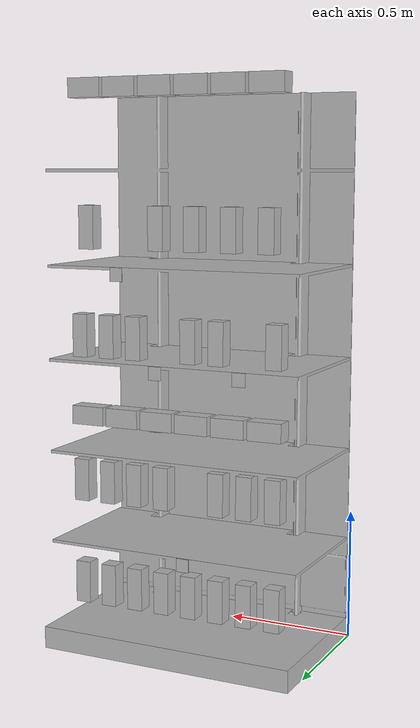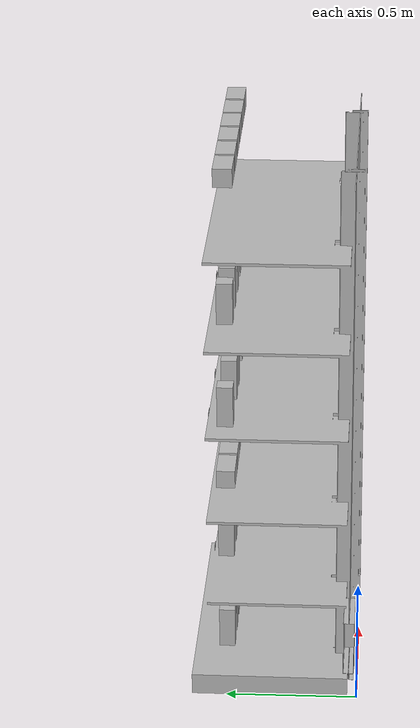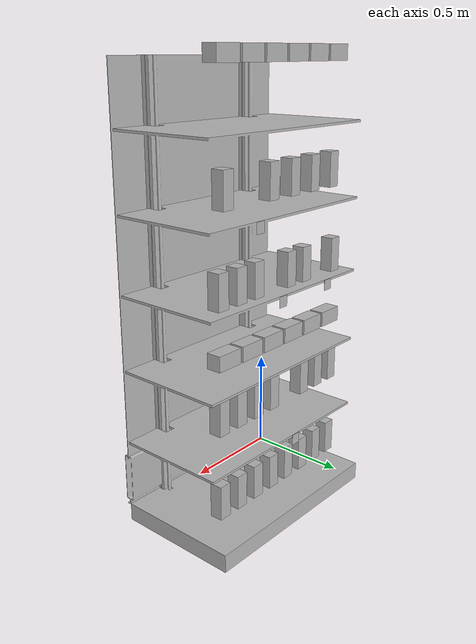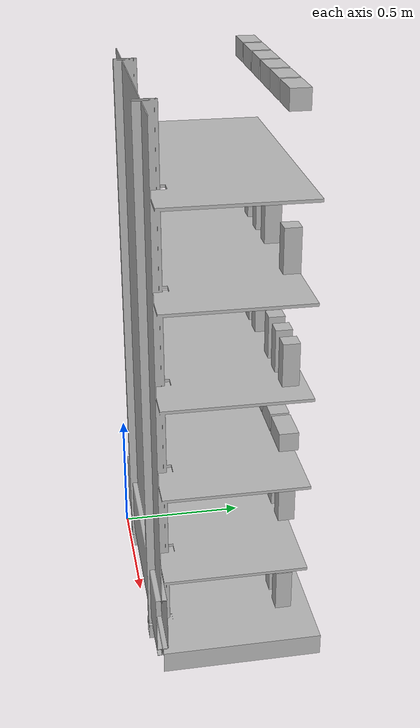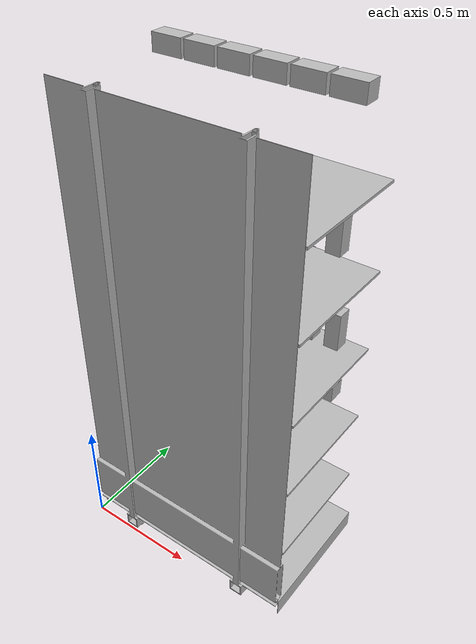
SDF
<?xml version="1.0"?>
<sdf version='1.6'>
  <model name='AH_shelf'>
    <static>1</static>
    <link name='link'>
      <inertial>
        <mass>1</mass>
        <inertia>
          <ixx>1</ixx>
          <ixy>0</ixy>
          <ixz>0</ixz>
          <iyy>1</iyy>
          <iyz>0</iyz>
          <izz>1</izz>
        </inertia>
      </inertial>
      <pose frame=''>-0 0 0 0 0 0</pose>

      <visual name='visual'>
        <pose frame=''>0 0 0 0 0 0</pose>
        <geometry>
          <mesh>
            <uri>model://AH_shelf/AH_shelf.dae</uri>
            <scale>1 1 1</scale>
          </mesh>
        </geometry>
        <transparency>0</transparency>
        <cast_shadows>1</cast_shadows>
      </visual>

      <collision name='collision'>
        <laser_retro>0</laser_retro>
        <max_contacts>10</max_contacts>
        <pose frame=''>0 0 0 0 -0 0</pose>
        <geometry>
          <mesh>
            <uri>model://AH_shelf/AH_shelf.dae</uri>
            <scale>1 1 1</scale>
          </mesh>
        </geometry>
        <surface>
          <friction>
            <ode>
              <mu>1</mu>
              <mu2>1</mu2>
              <fdir1>0 0 0</fdir1>
              <slip1>0</slip1>
              <slip2>0</slip2>
            </ode>
            <torsional>
              <coefficient>1</coefficient>
              <patch_radius>0</patch_radius>
              <surface_radius>0</surface_radius>
              <use_patch_radius>1</use_patch_radius>
              <ode>
                <slip>0</slip>
              </ode>
            </torsional>
          </friction>
          <bounce>
            <restitution_coefficient>0</restitution_coefficient>
            <threshold>1e+06</threshold>
          </bounce>
          <contact>
            <collide_without_contact>0</collide_without_contact>
            <collide_without_contact_bitmask>1</collide_without_contact_bitmask>
            <collide_bitmask>1</collide_bitmask>
            <ode>
              <soft_cfm>0</soft_cfm>
              <soft_erp>0.2</soft_erp>
              <kp>1e+13</kp>
              <kd>1</kd>
              <max_vel>0.01</max_vel>
              <min_depth>0</min_depth>
            </ode>
            <bullet>
              <split_impulse>1</split_impulse>
              <split_impulse_penetration_threshold>-0.01</split_impulse_penetration_threshold>
              <soft_cfm>0</soft_cfm>
              <soft_erp>0.2</soft_erp>
              <kp>1e+13</kp>
              <kd>1</kd>
            </bullet>
          </contact>
        </surface>
      </collision>
    </link>

    <include>
      <static>1</static>
      <uri>model://legacy_models/apriltag_1</uri>
      <pose>0.225 0.57 1.085 1.57 0 0</pose>
      <name>tag_1</name>
    </include>

    <include>
      <static>1</static>
      <uri>model://legacy_models/apriltag_1</uri>
      <pose>0.445 0.57 0.385 1.57 0 0</pose>
      <name>tag_2</name>
    </include>

    <include>
      <static>1</static>
      <uri>model://legacy_models/apriltag_1</uri>
      <pose>0.555 0.57 1.085 1.57 0 0</pose>
      <name>tag_3</name>
    </include>

    <include>
      <static>1</static>
      <uri>model://legacy_models/apriltag_1</uri>
      <pose>0.71 0.57 1.435 1.57 0 0</pose>
      <name>tag_4</name>
    </include>

    <model name="board1">
      <pose>0 0.5 0.25 0 0 0</pose>

      <include>
        <uri>model://AH_hagelslag_puur</uri>
        <pose>0.111111111111 0 0 0 0 1.57</pose>
        <name>ah_puur_1</name>
      </include>

      <include>
        <uri>model://AH_hagelslag_puur</uri>
        <pose>0.222222222222 0 0 0 0 1.57</pose>
        <name>ah_puur_2</name>
      </include>

      <include>
        <uri>model://AH_hagelslag_puur</uri>
        <pose>0.333333333333 0 0 0 0 1.57</pose>
        <name>ah_puur_3</name>
      </include>

      <include>
        <uri>model://AH_hagelslag_puur</uri>
        <pose>0.444444444444 0 0 0 0 1.57</pose>
        <name>ah_puur_4</name>
      </include>

      <include>
        <uri>model://AH_hagelslag_puur</uri>
        <pose>0.555555555556 0 0 0 0 1.57</pose>
        <name>ah_puur_5</name>
      </include>

      <include>
        <uri>model://AH_hagelslag_puur</uri>
        <pose>0.666666666667 0 0 0 0 1.57</pose>
        <name>ah_puur_6</name>
      </include>

      <include>
        <uri>model://AH_hagelslag_puur</uri>
        <pose>0.777777777778 0 0 0 0 1.57</pose>
        <name>ah_puur_7</name>
      </include>

      <include>
        <uri>model://AH_hagelslag_puur</uri>
        <pose>0.888888888889 0 0 0 0 1.57</pose>
        <name>ah_puur_8</name>
      </include>

    </model>

    <model name="board2">
      <pose>0 0.5 0.65 0 0 0</pose>

      <include>
        <uri>model://AH_hagelslag_melk</uri>
        <pose>0.111111111111 0 0 0 0 1.57</pose>
        <name>ah_melk_7</name>
      </include>

      <include>
        <uri>model://AH_hagelslag_melk</uri>
        <pose>0.222222222222 0 0 0 0 1.57</pose>
        <name>ah_melk_8</name>
      </include>

      <include>
        <uri>model://AH_hagelslag_melk</uri>
        <pose>0.333333333333 0 0 0 0 1.57</pose>
        <name>ah_melk_9</name>
      </include>

      <include>
        <uri>model://AH_hagelslag_melk</uri>
        <pose>0.555555555556 0 0 0 0 1.57</pose>
        <name>ah_melk_11</name>
      </include>

      <include>
        <uri>model://AH_hagelslag_melk</uri>
        <pose>0.666666666667 0 0 0 0 1.57</pose>
        <name>ah_melk_12</name>
      </include>

      <include>
        <uri>model://AH_hagelslag_melk</uri>
        <pose>0.777777777778 0 0 0 0 1.57</pose>
        <name>ah_melk_13</name>
      </include>

      <include>
        <uri>model://AH_hagelslag_melk</uri>
        <pose>0.888888888889 0 0 0 0 1.57</pose>
        <name>ah_melk_14</name>
      </include>

    </model>

    <model name="board3">
      <pose>0 0.5 0.9 0 0 0</pose>

      <include>
        <uri>model://AH_thee_bosvruchten</uri>
        <pose>0.142857142857 0 0 0 0 1.57</pose>
        <name>ah_thee_bosvruchten_1</name>
      </include>

      <include>
        <uri>model://AH_thee_bosvruchten</uri>
        <pose>0.285714285714 0 0 0 0 1.57</pose>
        <name>ah_thee_bosvruchten_2</name>
      </include>

      <include>
        <uri>model://AH_thee_bosvruchten</uri>
        <pose>0.428571428571 0 0 0 0 1.57</pose>
        <name>ah_thee_bosvruchten_3</name>
      </include>

      <include>
        <uri>model://AH_thee_bosvruchten</uri>
        <pose>0.571428571429 0 0 0 0 1.57</pose>
        <name>ah_thee_bosvruchten_4</name>
      </include>

      <include>
        <uri>model://AH_thee_bosvruchten</uri>
        <pose>0.714285714286 0 0 0 0 1.57</pose>
        <name>ah_thee_bosvruchten_5</name>
      </include>

      <include>
        <uri>model://AH_thee_bosvruchten</uri>
        <pose>0.857142857143 0 0 0 0 1.57</pose>
        <name>ah_thee_bosvruchten_6</name>
      </include>

    </model>

    <model name="board4">
      <pose>0 0.5 1.2 0 0 0</pose>

      <include>
        <uri>model://AH_hagelslag_puur</uri>
        <pose>0.111111111111 0 0 0 0 1.57</pose>
        <name>ah_puur_9</name>
      </include>

      <include>
        <uri>model://AH_hagelslag_puur</uri>
        <pose>0.333333333333 0 0 0 0 1.57</pose>
        <name>ah_puur_11</name>
      </include>

      <include>
        <uri>model://AH_hagelslag_puur</uri>
        <pose>0.444444444444 0 0 0 0 1.57</pose>
        <name>ah_puur_12</name>
      </include>

      <include>
        <uri>model://AH_hagelslag_puur</uri>
        <pose>0.666666666667 0 0 0 0 1.57</pose>
        <name>ah_puur_14</name>
      </include>

      <include>
        <uri>model://AH_hagelslag_puur</uri>
        <pose>0.777777777778 0 0 0 0 1.57</pose>
        <name>ah_puur_15</name>
      </include>

      <include>
        <uri>model://AH_hagelslag_puur</uri>
        <pose>0.888888888889 0 0 0 0 1.57</pose>
        <name>ah_puur_16</name>
      </include>

    </model>

    <model name="board5">
      <pose>0 0.5 1.6 0 0 0</pose>

      <include>
        <uri>model://AH_hagelslag_melk</uri>
        <pose>0.142857142857 0 0 0 0 1.57</pose>
        <name>ah_melk_1</name>
      </include>

      <include>
        <uri>model://AH_hagelslag_melk</uri>
        <pose>0.285714285714 0 0 0 0 1.57</pose>
        <name>ah_melk_2</name>
      </include>

      <include>
        <uri>model://AH_hagelslag_melk</uri>
        <pose>0.428571428571 0 0 0 0 1.57</pose>
        <name>ah_melk_3</name>
      </include>

      <include>
        <uri>model://AH_hagelslag_melk</uri>
        <pose>0.571428571429 0 0 0 0 1.57</pose>
        <name>ah_melk_4</name>
      </include>

      <include>
        <uri>model://AH_hagelslag_melk</uri>
        <pose>0.857142857143 0 0 0 0 1.57</pose>
        <name>ah_melk_6</name>
      </include>

    </model>

    <model name="board6">
      <pose>0 0.5 2.1 0 0 0</pose>

      <include>
        <uri>model://AH_thee_mango</uri>
        <pose>0.142857142857 0 0 0 0 1.57</pose>
        <name>ah_thee_mango_1</name>
      </include>

      <include>
        <uri>model://AH_thee_mango</uri>
        <pose>0.285714285714 0 0 0 0 1.57</pose>
        <name>ah_thee_mango_2</name>
      </include>

      <include>
        <uri>model://AH_thee_mango</uri>
        <pose>0.428571428571 0 0 0 0 1.57</pose>
        <name>ah_thee_mango_3</name>
      </include>

      <include>
        <uri>model://AH_thee_mango</uri>
        <pose>0.571428571429 0 0 0 0 1.57</pose>
        <name>ah_thee_mango_4</name>
      </include>

      <include>
        <uri>model://AH_thee_mango</uri>
        <pose>0.714285714286 0 0 0 0 1.57</pose>
        <name>ah_thee_mango_5</name>
      </include>

      <include>
        <uri>model://AH_thee_mango</uri>
        <pose>0.857142857143 0 0 0 0 1.57</pose>
        <name>ah_thee_mango_6</name>
      </include>

    </model>

  </model>
</sdf>

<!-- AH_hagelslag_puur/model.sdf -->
<sdf version='1.6'>
  <model name='AH_hagelslag_puur'>
    <static>0</static>
    <link name='link_0'>

      <inertial>
        <mass>0.1</mass>
        <inertia>
          <ixx>1.4e-03</ixx>
          <ixy>0</ixy>
          <ixz>0</ixz>
          <iyy>1.4e-03</iyy>
          <iyz>0</iyz>
          <izz>2.8e-03</izz>
        </inertia>
      </inertial>

      <pose frame=''>-0 0 0 0 -0 0</pose>

      <visual name='visual'>
        <pose frame=''>0 0 0 0 -0 0</pose>
        <geometry>
          <mesh>
            <uri>model://AH_hagelslag_puur/AH_hagelslag_puur/AH_hagelslag_puur.dae</uri>
            <scale>1 1 1</scale>
          </mesh>
        </geometry>
        <transparency>0</transparency>
        <cast_shadows>1</cast_shadows>
      </visual>

      <collision name='collision'>
        <laser_retro>0</laser_retro>
        <max_contacts>10</max_contacts>
        <pose frame=''>0 0 0 0 -0 0</pose>
        <geometry>
          <mesh>
            <uri>model://AH_hagelslag_puur/AH_hagelslag_puur/AH_hagelslag_puur.dae</uri>
            <scale>1 1 1</scale>
          </mesh>
        </geometry>
        <surface>
          <friction>
            <ode>
              <mu>1</mu>
              <mu2>1</mu2>
              <fdir1>0 0 0</fdir1>
              <slip1>0</slip1>
              <slip2>0</slip2>
            </ode>
            <torsional>
              <coefficient>1</coefficient>
              <patch_radius>0</patch_radius>
              <surface_radius>0</surface_radius>
              <use_patch_radius>1</use_patch_radius>
              <ode>
                <slip>0</slip>
              </ode>
            </torsional>
          </friction>
          <bounce>
            <restitution_coefficient>0</restitution_coefficient>
            <threshold>1e+06</threshold>
          </bounce>
          <contact>
            <collide_without_contact>0</collide_without_contact>
            <collide_without_contact_bitmask>1</collide_without_contact_bitmask>
            <collide_bitmask>1</collide_bitmask>
            <ode>
              <soft_cfm>0</soft_cfm>
              <soft_erp>0.2</soft_erp>
              <kp>1e+13</kp>
              <kd>1</kd>
              <max_vel>0.01</max_vel>
              <min_depth>0</min_depth>
            </ode>
            <bullet>
              <split_impulse>1</split_impulse>
              <split_impulse_penetration_threshold>-0.01</split_impulse_penetration_threshold>
              <soft_cfm>0</soft_cfm>
              <soft_erp>0.2</soft_erp>
              <kp>1e+13</kp>
              <kd>1</kd>
            </bullet>
          </contact>
        </surface>
      </collision>

    </link>
  </model>
</sdf>

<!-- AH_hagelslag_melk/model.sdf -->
<sdf version='1.6'>
  <model name='AH_hagelslag_melk'>
    <static>0</static>
    <link name='link_0'>

      <inertial>
        <mass>0.1</mass>
        <inertia>
          <ixx>1.4e-03</ixx>
          <ixy>0</ixy>
          <ixz>0</ixz>
          <iyy>1.4e-03</iyy>
          <iyz>0</iyz>
          <izz>2.8e-03</izz>
        </inertia>
      </inertial>

      <pose frame=''>-0 0 0 0 -0 0</pose>

      <visual name='visual'>
        <pose frame=''>0 0 0 0 -0 0</pose>
        <geometry>
          <mesh>
            <uri>model://AH_hagelslag_melk/AH_hagelslag_melk/AH_hagelslag_melk.dae</uri>
            <scale>1 1 1</scale>
          </mesh>
        </geometry>
        <transparency>0</transparency>
        <cast_shadows>1</cast_shadows>
      </visual>

      <collision name='collision'>
        <laser_retro>0</laser_retro>
        <max_contacts>10</max_contacts>
        <pose frame=''>0 0 0 0 -0 0</pose>
        <geometry>
          <mesh>
            <uri>model://AH_hagelslag_melk/AH_hagelslag_melk/AH_hagelslag_melk.dae</uri>
            <scale>1 1 1</scale>
          </mesh>
        </geometry>
        <surface>
          <friction>
            <ode>
              <mu>1</mu>
              <mu2>1</mu2>
              <fdir1>0 0 0</fdir1>
              <slip1>0</slip1>
              <slip2>0</slip2>
            </ode>
            <torsional>
              <coefficient>1</coefficient>
              <patch_radius>0</patch_radius>
              <surface_radius>0</surface_radius>
              <use_patch_radius>1</use_patch_radius>
              <ode>
                <slip>0</slip>
              </ode>
            </torsional>
          </friction>
          <bounce>
            <restitution_coefficient>0</restitution_coefficient>
            <threshold>1e+06</threshold>
          </bounce>
          <contact>
            <collide_without_contact>0</collide_without_contact>
            <collide_without_contact_bitmask>1</collide_without_contact_bitmask>
            <collide_bitmask>1</collide_bitmask>
            <ode>
              <soft_cfm>0</soft_cfm>
              <soft_erp>0.2</soft_erp>
              <kp>1e+13</kp>
              <kd>1</kd>
              <max_vel>0.01</max_vel>
              <min_depth>0</min_depth>
            </ode>
            <bullet>
              <split_impulse>1</split_impulse>
              <split_impulse_penetration_threshold>-0.01</split_impulse_penetration_threshold>
              <soft_cfm>0</soft_cfm>
              <soft_erp>0.2</soft_erp>
              <kp>1e+13</kp>
              <kd>1</kd>
            </bullet>
          </contact>
        </surface>
      </collision>

    </link>
  </model>
</sdf>

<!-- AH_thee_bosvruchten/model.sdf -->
<sdf version='1.6'>
  <model name='AH_thee_bosvruchten'>
    <static>0</static>
    <link name='link_0'>

      <inertial>
        <mass>0.1</mass>
        <inertia>
          <ixx>1.4e-03</ixx>
          <ixy>0</ixy>
          <ixz>0</ixz>
          <iyy>1.4e-03</iyy>
          <iyz>0</iyz>
          <izz>2.8e-03</izz>
        </inertia>
      </inertial>

      <pose frame=''>-0 0 0 0 -0 0</pose>

      <visual name='visual'>
        <pose frame=''>0 0 0 0 -0 0</pose>
        <geometry>
          <mesh>
            <uri>model://AH_thee_bosvruchten/AH_thee_bosvruchten/AH_thee_bosvruchten.dae</uri>
            <scale>1 1 1</scale>
          </mesh>
        </geometry>
        <transparency>0</transparency>
        <cast_shadows>1</cast_shadows>
      </visual>

      <collision name='collision'>
        <laser_retro>0</laser_retro>
        <max_contacts>10</max_contacts>
        <pose frame=''>0 0 0 0 -0 0</pose>
        <geometry>
          <mesh>
            <uri>model://AH_thee_bosvruchten/AH_thee_bosvruchten/AH_thee_bosvruchten.dae</uri>
            <scale>1 1 1</scale>
          </mesh>
        </geometry>
        <surface>
          <friction>
            <ode>
              <mu>1</mu>
              <mu2>1</mu2>
              <fdir1>0 0 0</fdir1>
              <slip1>0</slip1>
              <slip2>0</slip2>
            </ode>
            <torsional>
              <coefficient>1</coefficient>
              <patch_radius>0</patch_radius>
              <surface_radius>0</surface_radius>
              <use_patch_radius>1</use_patch_radius>
              <ode>
                <slip>0</slip>
              </ode>
            </torsional>
          </friction>
          <bounce>
            <restitution_coefficient>0</restitution_coefficient>
            <threshold>1e+06</threshold>
          </bounce>
          <contact>
            <collide_without_contact>0</collide_without_contact>
            <collide_without_contact_bitmask>1</collide_without_contact_bitmask>
            <collide_bitmask>1</collide_bitmask>
            <ode>
              <soft_cfm>0</soft_cfm>
              <soft_erp>0.2</soft_erp>
              <kp>1e+13</kp>
              <kd>1</kd>
              <max_vel>0.01</max_vel>
              <min_depth>0</min_depth>
            </ode>
            <bullet>
              <split_impulse>1</split_impulse>
              <split_impulse_penetration_threshold>-0.01</split_impulse_penetration_threshold>
              <soft_cfm>0</soft_cfm>
              <soft_erp>0.2</soft_erp>
              <kp>1e+13</kp>
              <kd>1</kd>
            </bullet>
          </contact>
        </surface>
      </collision>

    </link>
  </model>
</sdf>

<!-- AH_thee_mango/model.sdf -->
<sdf version='1.6'>
  <model name='AH_thee_mango'>
    <static>0</static>
    <link name='link_0'>

      <inertial>
        <mass>0.1</mass>
        <inertia>
          <ixx>1.4e-03</ixx>
          <ixy>0</ixy>
          <ixz>0</ixz>
          <iyy>1.4e-03</iyy>
          <iyz>0</iyz>
          <izz>2.8e-03</izz>
        </inertia>
      </inertial>

      <pose frame=''>-0 0 0 0 -0 0</pose>

      <visual name='visual'>
        <pose frame=''>0 0 0 0 -0 0</pose>
        <geometry>
          <mesh>
            <uri>model://AH_thee_mango/AH_thee_mango/AH_thee_mango.dae</uri>
            <scale>1 1 1</scale>
          </mesh>
        </geometry>
        <transparency>0</transparency>
        <cast_shadows>1</cast_shadows>
      </visual>

      <collision name='collision'>
        <laser_retro>0</laser_retro>
        <max_contacts>10</max_contacts>
        <pose frame=''>0 0 0 0 -0 0</pose>
        <geometry>
          <mesh>
            <uri>model://AH_thee_mango/AH_thee_mango/AH_thee_mango.dae</uri>
            <scale>1 1 1</scale>
          </mesh>
        </geometry>
        <surface>
          <friction>
            <ode>
              <mu>1</mu>
              <mu2>1</mu2>
              <fdir1>0 0 0</fdir1>
              <slip1>0</slip1>
              <slip2>0</slip2>
            </ode>
            <torsional>
              <coefficient>1</coefficient>
              <patch_radius>0</patch_radius>
              <surface_radius>0</surface_radius>
              <use_patch_radius>1</use_patch_radius>
              <ode>
                <slip>0</slip>
              </ode>
            </torsional>
          </friction>
          <bounce>
            <restitution_coefficient>0</restitution_coefficient>
            <threshold>1e+06</threshold>
          </bounce>
          <contact>
            <collide_without_contact>0</collide_without_contact>
            <collide_without_contact_bitmask>1</collide_without_contact_bitmask>
            <collide_bitmask>1</collide_bitmask>
            <ode>
              <soft_cfm>0</soft_cfm>
              <soft_erp>0.2</soft_erp>
              <kp>1e+13</kp>
              <kd>1</kd>
              <max_vel>0.01</max_vel>
              <min_depth>0</min_depth>
            </ode>
            <bullet>
              <split_impulse>1</split_impulse>
              <split_impulse_penetration_threshold>-0.01</split_impulse_penetration_threshold>
              <soft_cfm>0</soft_cfm>
              <soft_erp>0.2</soft_erp>
              <kp>1e+13</kp>
              <kd>1</kd>
            </bullet>
          </contact>
        </surface>
      </collision>

    </link>
  </model>
</sdf>

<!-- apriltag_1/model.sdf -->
<sdf version="1.4">
  <model name="apriltag_1">
    <static>0</static>
    <link name="marker">
      <inertial>
        <mass>0.1</mass>
        <inertia>
          <ixx>0.000000</ixx>
          <ixy>0.000000</ixy>
          <ixz>0.000000</ixz>
          <iyy>0.000000</iyy>
          <iyz>0.000000</iyz>
          <izz>0.000000</izz>
        </inertia>
      </inertial>
      <visual name="visual">
        <pose>0 0 0 0 0 1.57</pose>
        <geometry>
          <box>
            <size>0.05 0.05 0.001</size>
            <!-- SIZE OF THE MARKER + MARGIN -->
          </box>
        </geometry>
        <material>
          <script>
	    <uri>model://apriltag_1/material/scripts</uri>
	    <uri>model://apriltag_1/material/textures</uri>
            <name>Apriltag/apriltag_1</name>
          </script>
        </material>
      </visual>
      <collision name="collision">
        <geometry>
          <box>
            <size>0.05 0.05 0.001</size>
            <!-- SIZE OF THE MARKER + MARGIN -->
          </box>
        </geometry>
        <surface>
          <bounce />
          <friction>
            <ode />
          </friction>
          <contact>
            <ode />
          </contact>
        </surface>
      </collision>
      <self_collide>1</self_collide>
      <kinematic>0</kinematic>
      <gravity>1</gravity>
    </link>
  </model>
</sdf>
